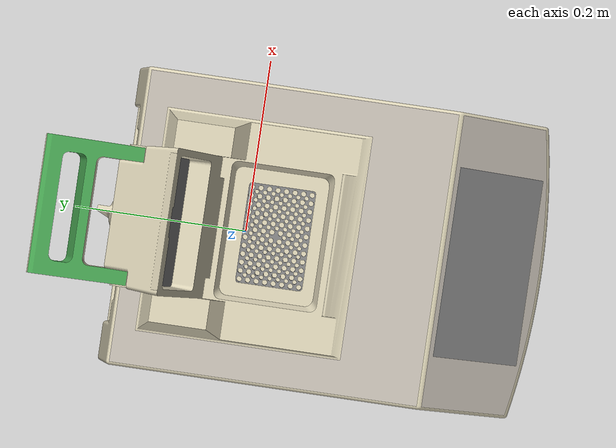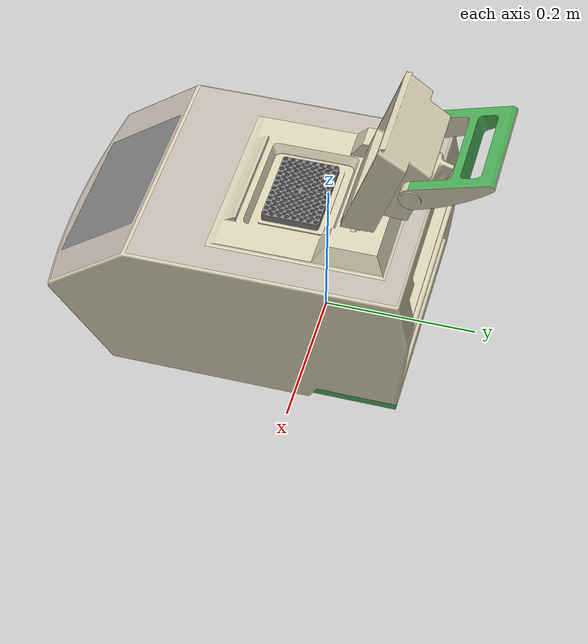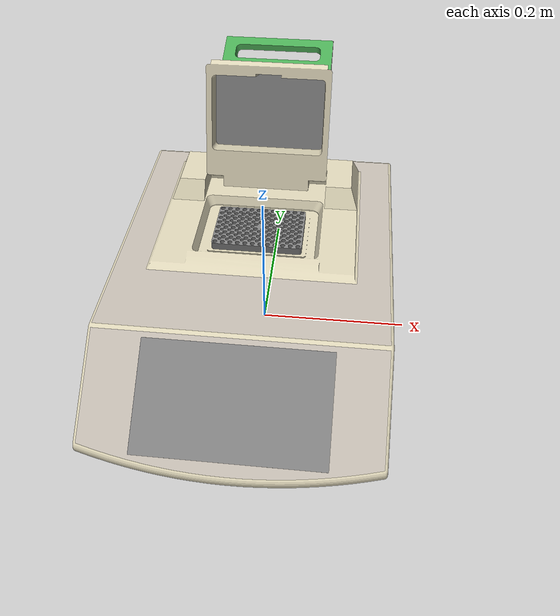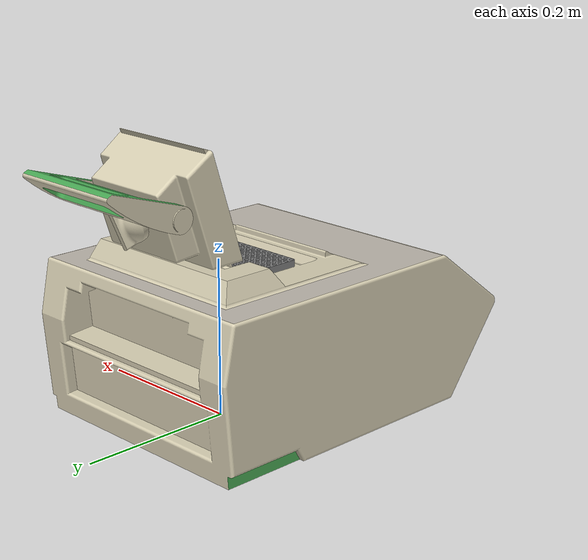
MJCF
<?xml version='1.0' encoding='utf-8'?>
<mujoco model="thermal_cycler_biorad_c1000">
  <compiler angle="radian" autolimits="true" assetdir="../../assets" />
  <default>
    <default class="visual">
      <geom type="mesh" contype="0" conaffinity="0" density="0" group="2" />
      <mesh inertia="shell" />
    </default>
    <default class="inertia">
      <geom type="mesh" contype="0" conaffinity="0" group="5" />
      <mesh inertia="exact" />
    </default>
    <default class="collision">
      <geom type="mesh" contype="0" conaffinity="1" density="0" group="3" />
    </default>
  </default>
  <option gravity="0 0 0" />
  <asset>
    <mesh class="visual" name="body-visual-0" file="instrument/thermal_cycler_biorad_c1000/body-visual-0.obj" />
    <material name="body-0" rgba="0.498039 0.498039 0.498039 1" metallic="0.0" roughness="1.0" />
    <mesh class="visual" name="body-visual-1" file="instrument/thermal_cycler_biorad_c1000/body-visual-1.obj" />
    <material name="body-1" rgba="0.286275 0.662745 0.329412 1" metallic="0.0" roughness="1.0" />
    <mesh class="visual" name="body-visual-2" file="instrument/thermal_cycler_biorad_c1000/body-visual-2.obj" />
    <material name="body-2" rgba="0.84313725 0.81176471 0.70196078 1" metallic="0.0" roughness="1.0" />
    <mesh class="visual" name="body-visual-3" file="instrument/thermal_cycler_biorad_c1000/body-visual-3.obj" />
    <texture name="body-0" type="2d" file="instrument/thermal_cycler_biorad_c1000/body-0.png" />
    <material name="body-3" rgba="1 1 1 1" metallic="0.0" roughness="1.0" texture="body-0" />
    <mesh class="inertia" name="body-inertia" file="instrument/thermal_cycler_biorad_c1000/body-inertia.obj" />
    <mesh class="collision" name="body-collision-0" file="instrument/thermal_cycler_biorad_c1000/body-collision-0.obj" />
    <mesh class="visual" name="lid-visual-0" file="instrument/thermal_cycler_biorad_c1000/lid-visual-0.obj" />
    <material name="lid-0" rgba="0.84313725 0.81176471 0.70196078 1" metallic="0.0" roughness="1.0" />
    <mesh class="visual" name="lid-visual-1" file="instrument/thermal_cycler_biorad_c1000/lid-visual-1.obj" />
    <material name="lid-1" rgba="0.498039 0.498039 0.498039 1" metallic="0.0" roughness="1.0" />
    <mesh class="inertia" name="lid-inertia" file="instrument/thermal_cycler_biorad_c1000/lid-inertia.obj" />
    <mesh class="visual" name="lid-lever-visual-0" file="instrument/thermal_cycler_biorad_c1000/lid-lever-visual-0.obj" />
    <material name="lid-lever-0" rgba="0.286275 0.662745 0.329412 1" metallic="0.0" roughness="1.0" />
    <mesh class="visual" name="lid-lever-visual-1" file="instrument/thermal_cycler_biorad_c1000/lid-lever-visual-1.obj" />
    <material name="lid-lever-1" rgba="0.84313725 0.81176471 0.70196078 1" metallic="0.0" roughness="1.0" />
    <mesh class="inertia" name="lid-lever-inertia" file="instrument/thermal_cycler_biorad_c1000/lid-lever-inertia.obj" />
    <mesh class="visual" name="lid-force-knob-visual-0" file="instrument/thermal_cycler_biorad_c1000/lid-force-knob-visual-0.obj" />
    <material name="lid-force-knob-0" rgba="0.84313725 0.81176471 0.70196078 1" metallic="0.0" roughness="1.0" />
    <mesh class="inertia" name="lid-force-knob-inertia" file="instrument/thermal_cycler_biorad_c1000/lid-force-knob-inertia.obj" />
    <mesh class="visual" name="reaction-block-visual-0" file="instrument/thermal_cycler_biorad_c1000/reaction-block-visual-0.obj" />
    <material name="reaction-block-0" rgba="0.498039 0.498039 0.498039 1" metallic="0.0" roughness="1.0" />
    <mesh class="inertia" name="reaction-block-inertia" file="instrument/thermal_cycler_biorad_c1000/reaction-block-inertia.obj" />
  </asset>
  <extension>
    <plugin plugin="mjlab.passive.detent">
      <instance name="detent" />
    </plugin>
  </extension>
  <worldbody>
    <body name="body" pos="-0 -0.0621555 0.09735156" quat="0 0 0 1">
      <geom class="visual" mesh="body-visual-0" material="body-0" />
      <geom class="visual" mesh="body-visual-1" material="body-1" />
      <geom class="visual" mesh="body-visual-2" material="body-2" />
      <geom class="visual" mesh="body-visual-3" material="body-3" />
      <geom class="inertia" mesh="body-inertia" density="1000" />
      <geom class="collision" mesh="body-collision-0" />
      <geom class="collision" type="box" size="0.16531634 0.1768885 0.09141993" pos="0 -0.01750868 -0.00415259" />
      <geom class="collision" type="box" size="0.04705458 0.05891233 0.00550538" pos="-0.11857205 -0.0259347 0.09345097" />
      <geom class="collision" type="box" size="0.04705458 0.05891233 0.00550538" pos="0.11818152 -0.0259347 0.09345097" />
      <geom class="collision" type="box" size="0.16531634 0.05323186 0.00545543" pos="0 -0.13729936 0.09345097" />
      <geom class="collision" type="box" size="0.16531634 0.064804 0.00545543" pos="0 0.09293923 0.09345097" />
      <geom class="collision" type="box" size="0.11763413 0.03564314 0.01211631" pos="0 -0.11857569 0.10963205" />
      <geom class="collision" type="box" size="0.07844975 0.00706048 0.00431473" pos="0 0.04603181 0.1023905" />
      <body name="lid" pos="-0 -0.11407998 0.14201831" quat="0 -0 -0.15695801 0.98760528">
        <joint name="lid" type="hinge" pos="-0.07835153 0.00491715 -0.02499539" axis="-1 -0 0" range="-1.9 0" />
        <geom class="visual" mesh="lid-visual-0" material="lid-0" />
        <geom class="visual" mesh="lid-visual-1" material="lid-1" />
        <geom class="inertia" mesh="lid-inertia" density="1000" />
        <geom class="collision" type="box" size="0.056 0.01887199 0.01316" pos="-0.00085045 0.00096269 -0.01868714" quat="0.70710681 -0.70710675 0 0" />
        <geom class="collision" type="box" size="0.07751919 0.01744181 0.01968988" pos="-0.00023828 0.00745284 -0.00582981" quat="0.70710681 -0.70710675 0 0" />
        <geom class="collision" type="box" size="0.07751919 0.00635657 0.01968988" pos="-0.00023828 0.00745283 0.11228961" quat="0.70710681 -0.70710675 0 0" />
        <geom class="collision" type="box" size="0.07097511 0.00581996 0.02001498" pos="-0.07195542 0.00738207 0.04790889" quat="0.4999889 -0.49998886 0.5000111 0.50001114" />
        <geom class="collision" type="box" size="0.07097511 0.00581996 0.02001498" pos="0.07156257 0.00738207 0.04790889" quat="0.4999889 -0.49998886 0.5000111 0.50001114" />
        <geom class="collision" type="box" size="0.05709077 0.05115333 0.01804068" pos="-0.00213858 0.04121279 0.05533712" quat="0.70710681 -0.70710675 0 0" />
        <body name="lid-lever" pos="0.00000001 0.02497296 0.01787273" quat="0.99983132 0.01836635 0 -0">
          <joint name="lid-lever" type="hinge" pos="0.05808487 0.02498769 0.04570046" axis="-1 -0 -0" range="-0.94 0" springdamper="0.05 1" armature="0.0005" user="2" />
          <plugin instance="detent" />
          <geom class="visual" mesh="lid-lever-visual-0" material="lid-lever-0" />
          <geom class="visual" mesh="lid-lever-visual-1" material="lid-lever-1" />
          <geom class="inertia" mesh="lid-lever-inertia" density="1000" />
          <geom class="collision" type="box" size="0.07402492 0.00599602 0.0142868" pos="0.00000558 0.07184963 0.07713565" quat="0.95760974 0.28806872 -0 -0" />
          <geom class="collision" type="box" size="0.07402492 0.00599602 0.00673626" pos="0.00000558 0.10147841 0.10633726" quat="0.95760974 0.28806872 -0 -0" />
          <site name="lid-lever" pos="0.00000558 0.10147841 0.10633726" quat="0.95760974 0.28806872 -0 -0" rgba="1 0 0 1" />
          <geom class="collision" type="box" size="0.00745335 0.03336119 0.01475018" pos="-0.06579017 0.04027029 0.05656042" quat="0.95760974 0.28806872 -0 -0" />
          <geom class="collision" type="box" size="0.00745335 0.03336119 0.01475018" pos="0.06588534 0.04027029 0.05656042" quat="0.95760974 0.28806872 -0 -0" />
          <geom class="collision" type="box" size="0.00745335 0.03336119 0.00648441" pos="-0.06579017 0.07820781 0.09137272" quat="0.95760974 0.28806872 -0 -0" />
          <geom class="collision" type="box" size="0.00745335 0.03336119 0.00648441" pos="0.06595135 0.07820781 0.09137272" quat="0.95760974 0.28806872 -0 -0" />
        </body>
        <body name="lid-force-knob" pos="0.04853316 0.01582532 0.04458983" quat="0.76837396 0.00000003 -0.64000113 -0.00000001">
          <joint name="lid-force-knob" type="hinge" pos="0.00000062 0.04339292 0.04934651" axis="0 -1 0" range="0 60" frictionloss="0.01" damping="0.001"/>
          <site name="lid-force-knob" pos="0.00000062 0.04339292 0.04934651" quat="1 -1 0 0" />
          <geom class="visual" mesh="lid-force-knob-visual-0" material="lid-force-knob-0" />
          <geom class="inertia" mesh="lid-force-knob-inertia" density="1000" />
          <geom class="collision" type="sphere" size="0.02515104" pos="0.00008293 0.0370119 0.04934166" />
          <geom class="collision" type="cylinder" size="0.0239007 0.0032983" pos="0 0.04713839 0.04956995" quat="0.7071261 0.70708746 0 0" />
          <geom class="collision" type="box" size="0.02396715 0.01078522 0.00318763" pos="0 0.05702952 0.04948573" />
        </body>
      </body>
      <body name="reaction-block" pos="-0 -0.02582798 0.09007778" quat="1 -0 0 0">
        <geom class="visual" mesh="reaction-block-visual-0" material="reaction-block-0" />
        <geom class="inertia" mesh="reaction-block-inertia" density="1000" />
      </body>
    </body>
  </worldbody>
  <equality>
    <joint name="lid-lock" joint1="lid" polycoef="-1.9" active="false" />
  </equality>
  <actuator />
</mujoco>
